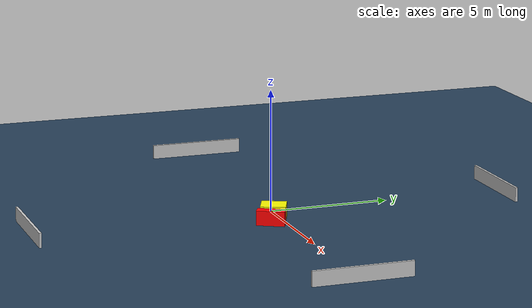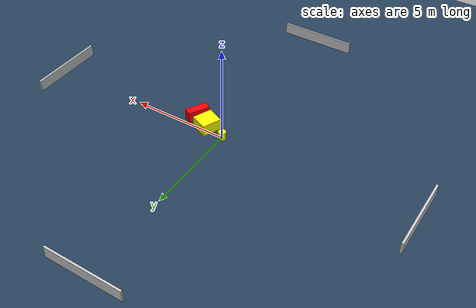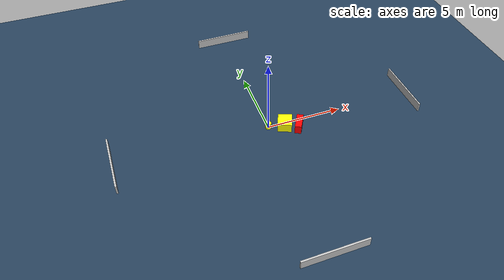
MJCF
<?xml version="1.0" ?>
<mujoco model="generated_environment">
  <option timestep="0.01" integrator="RK4" cone="elliptic"/>
  <default>
    <geom density="1"/>
  </default>
  <asset>
    <texture builtin="gradient" height="3072" name="skybox" rgb1="0.3 0.5 0.7" rgb2="0 0 0" type="skybox" width="512"/>
    <texture builtin="checker" height="300" name="groundplane" rgb1="0.2 0.3 0.4" rgb2="0.1 0.2 0.3" type="2d" width="300"/>
    <material name="groundplane" reflectance="0.2" texrepeat="5 5" texture="groundplane"/>
  </asset>
  <worldbody>
    <light dir="0 0 -1" directional="true" pos="0 0 1.5"/>
    <geom condim="3" friction="0.5 0.005 0.001" material="groundplane" name="floor" pos="0 0 0" size="0 0 0.05" type="plane"/>
    <body name="walls">
      <geom name="wall_1" condim="4" pos="-10.0 0.0 0.3" rgba="0.800000011920929 0.800000011920929 0.800000011920929 1.0" size="0.05 2.0 0.3" type="box"/>
      <geom name="wall_2" condim="4" pos="10.0 0.0 0.3" rgba="0.800000011920929 0.800000011920929 0.800000011920929 1.0" size="0.05 2.0 0.3" type="box"/>
      <geom name="wall_3" condim="4" pos="0.0 -10.0 0.3" rgba="0.800000011920929 0.800000011920929 0.800000011920929 1.0" size="2.0 0.05 0.3" type="box"/>
      <geom name="wall_4" condim="4" pos="0.0 10.0 0.3" rgba="0.800000011920929 0.800000011920929 0.800000011920929 1.0" size="2.0 0.05 0.3" type="box"/>
    </body>
    <body name="robot">
      <joint name="joint_x" type="slide" pos="0 0 0" axis="1 0 0"/>
      <joint name="joint_y" type="slide" pos="0 0 0" axis="0 1 0"/>
      <geom name="robot" type="cylinder" pos="0.0 0.0 0.2" size="0.2 0.2 0.0" mass="5.0" friction="1.0 0.005 0.0001" condim="4" rgba="1.0 1.0 0.0 1.0"/>
    </body>
    <body name="obstacle_1_movable">
      <geom name="obstacle_1_movable" condim="4" pos="1.0409198893964544 -0.25336013331300405 0.3" euler="0 0 246.979964031541" friction="0.0 0.005 0.001" rgba="1.0 1.0 0.0 1.0" size="0.5118932152934976 0.4602939991599972 0.3" type="box" mass="0.1"/>
      <joint type="free"/>
    </body>
    <body name="obstacle_2_static">
      <geom name="obstacle_2_static" condim="4" pos="1.8748091888981189 -0.65646205797079 0.3" euler="0 0 330.7492759894898" friction="0.0 0.005 0.001" rgba="1.0 0.0 0.0 1.0" size="0.21106711542714987 0.5705909821273107 0.3" type="box"/>
    </body>
  </worldbody>
  <actuator>
    <motor name="actuator_x" joint="joint_x" gear="1" ctrlrange="-1 1"/>
    <motor name="actuator_y" joint="joint_y" gear="1" ctrlrange="-1 1"/>
  </actuator>
</mujoco>
